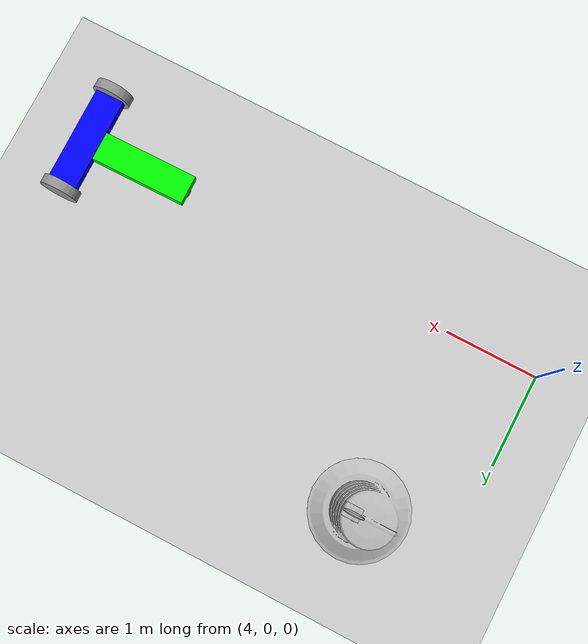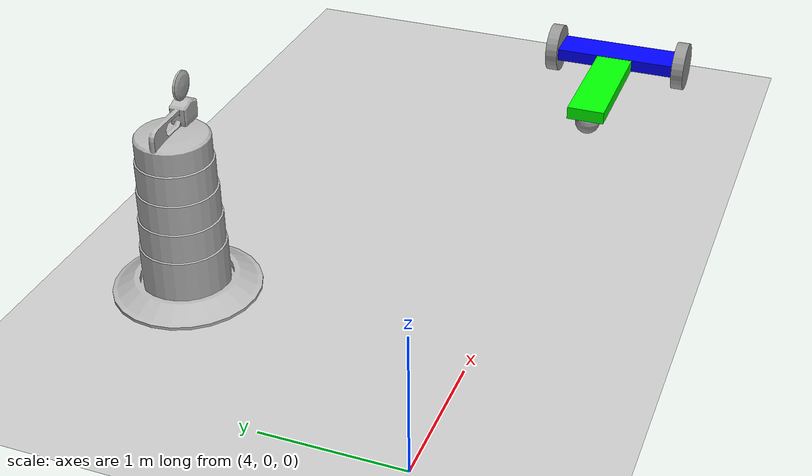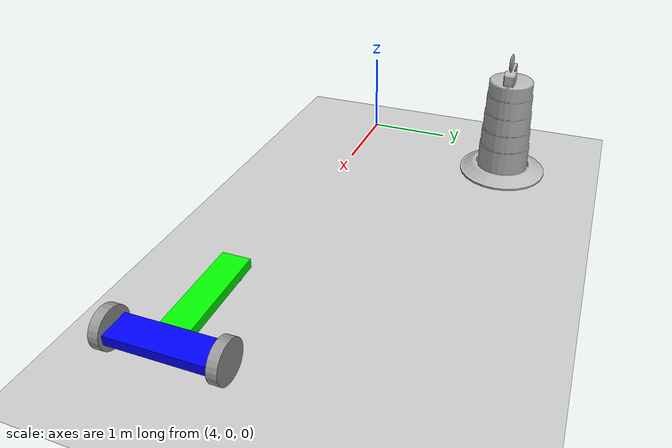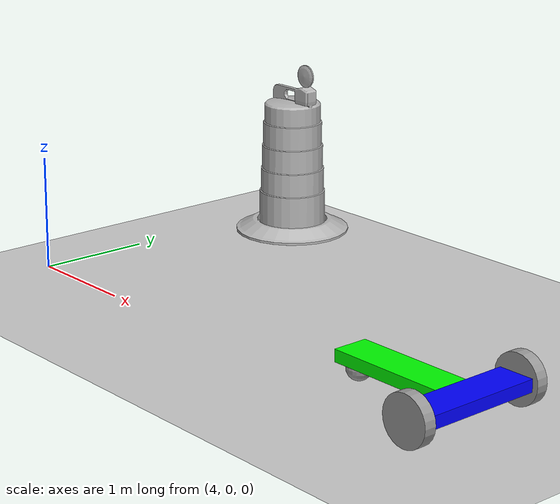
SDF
<sdf version="1.6">
 <world name="default">
  <light name="sun" type="directional">
   <pose>0 0 10 0 -0 0</pose>
   <diffuse>0.8 0.8 0.8 1</diffuse>
   <specular>0.2 0.2 0.2 1</specular>
   <attenuation>
    <range>1000</range>
    <constant>0.9</constant>
    <linear>0.01</linear>
    <quadratic>0.001</quadratic>
   </attenuation>
   <direction>-0.5 0.1 -0.9</direction>
  </light>
  <model name="ground_plane">
   <static>1</static>
   <link name="link">
    <collision name="collision">
     <geometry><plane><normal>0 0 1</normal><size>100 100</size></plane></geometry>
     <surface><friction><ode><mu>100</mu><mu2>50</mu2></ode></friction></surface>
    </collision>
    <visual name="visual">
     <cast_shadows>0</cast_shadows>
     <geometry><plane><normal>0 0 1</normal><size>100 100</size></plane></geometry>
     <material>
      <script><uri>file://media/materials/scripts/gazebo.material</uri><name>Gazebo/Grey</name></script>
     </material>
    </visual>
   </link>
  </model>
  <gravity>0 0 -9.8</gravity>
  <magnetic_field>6e-06 2.3e-05 -4.2e-05</magnetic_field>
  <atmosphere type="adiabatic"/>
  <physics name="default_physics" default="0" type="ode">
   <max_step_size>0.001</max_step_size>
   <real_time_factor>1</real_time_factor>
   <real_time_update_rate>1000</real_time_update_rate>
  </physics>
  <scene><ambient>0.4 0.4 0.4 1</ambient><background>0.7 0.7 0.7 1</background><shadows>1</shadows></scene>
  <spherical_coordinates>
   <surface_model>EARTH_WGS84</surface_model>
   <latitude_deg>0</latitude_deg>
   <longitude_deg>0</longitude_deg>
   <elevation>0</elevation>
   <heading_deg>0</heading_deg>
  </spherical_coordinates>
  <model name="Construction Barrel">
   <link name="link">
    <inertial>
     <pose>0 0 0.4 0 -0 0</pose>
     <mass>500</mass>
     <inertia><ixx>51.2096</ixx><iyy>51.2096</iyy><izz>25</izz><ixy>0</ixy><ixz>0</ixz><iyz>0</iyz></inertia>
    </inertial>
    <collision name="collision">
     <geometry><mesh><uri>model://construction_barrel/meshes/construction_barrel.dae</uri></mesh></geometry>
    </collision>
    <visual name="visual">
     <geometry><mesh><uri>model://construction_barrel/meshes/construction_barrel.dae</uri></mesh></geometry>
    </visual>
   </link>
   <pose>5.00004 2.00003 0.189799 4e-06 -0 0.003871</pose>
  </model>
  <model name="myRobot">
   <link name="link_0">
    <inertial>
     <mass>1</mass>
     <inertia>
      <ixx>0.166667</ixx>
      <ixy>0</ixy>
      <ixz>0</ixz>
      <iyy>0.166667</iyy>
      <iyz>0</iyz>
      <izz>0.166667</izz>
     </inertia>
     <pose>-0.01 0 0 0 -0 0</pose>
    </inertial>
    <pose>0.00249 0.000674 0.2 3.14159 0.001593 3.14159</pose>
    <visual name="visual">
     <geometry><box><size>0.3 1 0.1</size></box></geometry>
     <material>
      <lighting>1</lighting>
      <script><uri>file://media/materials/scripts/gazebo.material</uri><name>Gazebo/Grey</name></script>
      <shader type="pixel"><normal_map>__default__</normal_map></shader>
      <ambient>0 0 1 1</ambient>
      <diffuse>0 0 1 1</diffuse>
      <specular>0 0 1 1</specular>
      <emissive>0 0 0 1</emissive>
     </material>
    </visual>
    <collision name="collision">
     <geometry><box><size>0.3 1 0.1</size></box></geometry>
     <surface>
      <friction>
       <ode><mu>1</mu><mu2>1</mu2><fdir1>0 0 0</fdir1><slip1>0</slip1><slip2>0</slip2></ode>
       <torsional>
        <coefficient>1</coefficient>
        <patch_radius>0</patch_radius>
        <surface_radius>0</surface_radius>
        <use_patch_radius>1</use_patch_radius>
        <ode><slip>0</slip></ode>
       </torsional>
      </friction>
      <bounce><restitution_coefficient>0</restitution_coefficient><threshold>1e+06</threshold></bounce>
      <contact>
       <collide_without_contact>0</collide_without_contact>
       <collide_without_contact_bitmask>1</collide_without_contact_bitmask>
       <collide_bitmask>1</collide_bitmask>
       <ode>
        <soft_cfm>0</soft_cfm>
        <soft_erp>0.2</soft_erp>
        <kp>1e+13</kp>
        <kd>1</kd>
        <max_vel>0.01</max_vel>
        <min_depth>0</min_depth>
       </ode>
       <bullet>
        <split_impulse>1</split_impulse>
        <split_impulse_penetration_threshold>-0.01</split_impulse_penetration_threshold>
        <soft_cfm>0</soft_cfm>
        <soft_erp>0.2</soft_erp>
        <kp>1e+13</kp>
        <kd>1</kd>
       </bullet>
      </contact>
     </surface>
    </collision>
   </link>
   <link name="link_0_0">
    <inertial>
     <mass>1</mass>
     <inertia><ixx>0.1</ixx><ixy>0</ixy><ixz>0</ixz><iyy>0.1</iyy><iyz>0</iyz><izz>0.1</izz></inertia>
    </inertial>
    <pose>-1.04973 -1e-06 0.1 -3.14159 0.001372 3.14131</pose>
    <visual name="visual">
     <geometry><sphere><radius>0.1</radius></sphere></geometry>
     <material>
      <lighting>1</lighting>
      <script><uri>file://media/materials/scripts/gazebo.material</uri><name>Gazebo/Grey</name></script>
      <shader type="pixel"><normal_map>__default__</normal_map></shader>
      <ambient>0.3 0.3 0.3 1</ambient>
      <diffuse>0.7 0.7 0.7 1</diffuse>
      <specular>0.01 0.01 0.01 1</specular>
      <emissive>0 0 0 1</emissive>
     </material>
    </visual>
    <collision name="collision">
     <geometry><sphere><radius>0.1</radius></sphere></geometry>
     <surface>
      <friction>
       <ode><mu>1</mu><mu2>1</mu2><fdir1>0 0 0</fdir1><slip1>0</slip1><slip2>0</slip2></ode>
       <torsional>
        <coefficient>1</coefficient>
        <patch_radius>0</patch_radius>
        <surface_radius>0</surface_radius>
        <use_patch_radius>1</use_patch_radius>
        <ode><slip>0</slip></ode>
       </torsional>
      </friction>
      <bounce><restitution_coefficient>0</restitution_coefficient><threshold>1e+06</threshold></bounce>
      <contact>
       <collide_without_contact>0</collide_without_contact>
       <collide_without_contact_bitmask>1</collide_without_contact_bitmask>
       <collide_bitmask>1</collide_bitmask>
       <ode>
        <soft_cfm>0</soft_cfm>
        <soft_erp>0.2</soft_erp>
        <kp>1e+13</kp>
        <kd>1</kd>
        <max_vel>0.01</max_vel>
        <min_depth>0</min_depth>
       </ode>
       <bullet>
        <split_impulse>1</split_impulse>
        <split_impulse_penetration_threshold>-0.01</split_impulse_penetration_threshold>
        <soft_cfm>0</soft_cfm>
        <soft_erp>0.2</soft_erp>
        <kp>1e+13</kp>
        <kd>1</kd>
       </bullet>
      </contact>
     </surface>
    </collision>
   </link>
   <link name="link_0_clone_clone">
    <inertial>
     <mass>1</mass>
     <inertia>
      <ixx>0.166667</ixx>
      <ixy>0</ixy>
      <ixz>0</ixz>
      <iyy>0.166667</iyy>
      <iyz>0</iyz>
      <izz>0.166667</izz>
     </inertia>
     <pose>-0.01 0 0 0 -0 0</pose>
    </inertial>
    <pose>-0.650318 0.000187 0.19965 -3.14022 -0 1.5707</pose>
    <visual name="visual">
     <geometry><box><size>0.3 1 0.1</size></box></geometry>
     <material>
      <lighting>1</lighting>
      <script><uri>file://media/materials/scripts/gazebo.material</uri><name>Gazebo/Grey</name></script>
      <shader type="pixel"><normal_map>__default__</normal_map></shader>
      <ambient>0 1 0 1</ambient>
      <diffuse>0 0 0 1</diffuse>
      <specular>0 0 0 1</specular>
      <emissive>0 0 0 1</emissive>
     </material>
    </visual>
    <collision name="collision">
     <geometry><box><size>0.3 1 0.1</size></box></geometry>
     <surface>
      <friction>
       <ode><mu>1</mu><mu2>1</mu2><fdir1>0 0 0</fdir1><slip1>0</slip1><slip2>0</slip2></ode>
       <torsional>
        <coefficient>1</coefficient>
        <patch_radius>0</patch_radius>
        <surface_radius>0</surface_radius>
        <use_patch_radius>1</use_patch_radius>
        <ode><slip>0</slip></ode>
       </torsional>
      </friction>
      <bounce><restitution_coefficient>0</restitution_coefficient><threshold>1e+06</threshold></bounce>
      <contact>
       <collide_without_contact>0</collide_without_contact>
       <collide_without_contact_bitmask>1</collide_without_contact_bitmask>
       <collide_bitmask>1</collide_bitmask>
       <ode>
        <soft_cfm>0</soft_cfm>
        <soft_erp>0.2</soft_erp>
        <kp>1e+13</kp>
        <kd>1</kd>
        <max_vel>0.01</max_vel>
        <min_depth>0</min_depth>
       </ode>
       <bullet>
        <split_impulse>1</split_impulse>
        <split_impulse_penetration_threshold>-0.01</split_impulse_penetration_threshold>
        <soft_cfm>0</soft_cfm>
        <soft_erp>0.2</soft_erp>
        <kp>1e+13</kp>
        <kd>1</kd>
       </bullet>
      </contact>
     </surface>
    </collision>
   </link>
   <link name="link_2">
    <inertial>
     <mass>1</mass>
     <inertia><ixx>0.145833</ixx><ixy>0</ixy><ixz>0</ixz><iyy>0.145833</iyy><iyz>0</iyz><izz>0.125</izz></inertia>
    </inertial>
    <pose>-0 -0.550019 0.2 1.5707 -0 0</pose>
    <visual name="visual">
     <geometry><cylinder><radius>0.2</radius><length>0.1</length></cylinder></geometry>
     <material>
      <lighting>1</lighting>
      <script><uri>file://media/materials/scripts/gazebo.material</uri><name>Gazebo/Grey</name></script>
      <shader type="pixel"><normal_map>__default__</normal_map></shader>
      <ambient>1 1 1 1</ambient>
      <diffuse>1 1 1 1</diffuse>
      <specular>1 1 1 1</specular>
      <emissive>0 0 0 1</emissive>
     </material>
    </visual>
    <collision name="collision">
     <geometry><cylinder><radius>0.2</radius><length>0.1</length></cylinder></geometry>
     <surface>
      <friction>
       <ode><mu>1</mu><mu2>1</mu2><fdir1>0 0 0</fdir1><slip1>0</slip1><slip2>0</slip2></ode>
       <torsional>
        <coefficient>1</coefficient>
        <patch_radius>0</patch_radius>
        <surface_radius>0</surface_radius>
        <use_patch_radius>1</use_patch_radius>
        <ode><slip>0</slip></ode>
       </torsional>
      </friction>
      <bounce><restitution_coefficient>0</restitution_coefficient><threshold>1e+06</threshold></bounce>
      <contact>
       <collide_without_contact>0</collide_without_contact>
       <collide_without_contact_bitmask>1</collide_without_contact_bitmask>
       <collide_bitmask>1</collide_bitmask>
       <ode>
        <soft_cfm>0</soft_cfm>
        <soft_erp>0.2</soft_erp>
        <kp>1e+13</kp>
        <kd>1</kd>
        <max_vel>0.01</max_vel>
        <min_depth>0</min_depth>
       </ode>
       <bullet>
        <split_impulse>1</split_impulse>
        <split_impulse_penetration_threshold>-0.01</split_impulse_penetration_threshold>
        <soft_cfm>0</soft_cfm>
        <soft_erp>0.2</soft_erp>
        <kp>1e+13</kp>
        <kd>1</kd>
       </bullet>
      </contact>
     </surface>
    </collision>
   </link>
   <link name="link_2_clone">
    <inertial>
     <mass>1</mass>
     <inertia><ixx>0.145833</ixx><ixy>0</ixy><ixz>0</ixz><iyy>0.145833</iyy><iyz>0</iyz><izz>0.125</izz></inertia>
    </inertial>
    <pose>0 0.550019 0.2 1.5707 -0 0</pose>
    <visual name="visual">
     <geometry><cylinder><radius>0.2</radius><length>0.1</length></cylinder></geometry>
     <material>
      <lighting>1</lighting>
      <script><uri>file://media/materials/scripts/gazebo.material</uri><name>Gazebo/Grey</name></script>
      <shader type="pixel"><normal_map>__default__</normal_map></shader>
      <ambient>1 1 1 1</ambient>
      <diffuse>1 1 1 1</diffuse>
      <specular>1 1 1 1</specular>
      <emissive>0 0 0 1</emissive>
     </material>
    </visual>
    <collision name="collision">
     <geometry><cylinder><radius>0.2</radius><length>0.1</length></cylinder></geometry>
     <surface>
      <friction>
       <ode><mu>1</mu><mu2>1</mu2><fdir1>0 0 0</fdir1><slip1>0</slip1><slip2>0</slip2></ode>
       <torsional>
        <coefficient>1</coefficient>
        <patch_radius>0</patch_radius>
        <surface_radius>0</surface_radius>
        <use_patch_radius>1</use_patch_radius>
        <ode><slip>0</slip></ode>
       </torsional>
      </friction>
      <bounce><restitution_coefficient>0</restitution_coefficient><threshold>1e+06</threshold></bounce>
      <contact>
       <collide_without_contact>0</collide_without_contact>
       <collide_without_contact_bitmask>1</collide_without_contact_bitmask>
       <collide_bitmask>1</collide_bitmask>
       <ode>
        <soft_cfm>0</soft_cfm>
        <soft_erp>0.2</soft_erp>
        <kp>1e+13</kp>
        <kd>1</kd>
        <max_vel>0.01</max_vel>
        <min_depth>0</min_depth>
       </ode>
       <bullet>
        <split_impulse>1</split_impulse>
        <split_impulse_penetration_threshold>-0.01</split_impulse_penetration_threshold>
        <soft_cfm>0</soft_cfm>
        <soft_erp>0.2</soft_erp>
        <kp>1e+13</kp>
        <kd>1</kd>
       </bullet>
      </contact>
     </surface>
    </collision>
   </link>
   <joint name="link_0_JOINT_2" type="revolute">
    <parent>link_0</parent>
    <child>link_2</child>
    <axis>
     <xyz>0 0 1</xyz>
     <use_parent_model_frame>0</use_parent_model_frame>
     <limit>
      <lower>-1.79769e+308</lower>
      <upper>1.79769e+308</upper>
      <effort>-1</effort>
      <velocity>-1</velocity>
     </limit>
     <dynamics>
      <spring_reference>0</spring_reference>
      <spring_stiffness>0</spring_stiffness>
      <damping>0</damping>
      <friction>0</friction>
     </dynamics>
    </axis>
    <physics>
     <ode><limit><cfm>0</cfm><erp>0.2</erp></limit><suspension><cfm>0</cfm><erp>0.2</erp></suspension></ode>
    </physics>
   </joint>
   <joint name="link_0_JOINT_3_0" type="fixed">
    <parent>link_0</parent>
    <child>link_0_clone_clone</child>
    <physics>
     <ode><limit><cfm>0</cfm><erp>0.2</erp></limit><suspension><cfm>0</cfm><erp>0.2</erp></suspension></ode>
    </physics>
   </joint>
   <joint name="link_0_JOINT_3" type="revolute">
    <parent>link_0</parent>
    <child>link_2_clone</child>
    <axis>
     <xyz>0 0 1</xyz>
     <use_parent_model_frame>0</use_parent_model_frame>
     <limit>
      <lower>-1.79769e+308</lower>
      <upper>1.79769e+308</upper>
      <effort>-1</effort>
      <velocity>-1</velocity>
     </limit>
     <dynamics>
      <spring_reference>0</spring_reference>
      <spring_stiffness>0</spring_stiffness>
      <damping>0</damping>
      <friction>0</friction>
     </dynamics>
    </axis>
    <physics>
     <ode><limit><cfm>0</cfm><erp>0.2</erp></limit><suspension><cfm>0</cfm><erp>0.2</erp></suspension></ode>
    </physics>
   </joint>
   <joint name="link_0_clone_clone_JOINT_7" type="fixed">
    <parent>link_0_clone_clone</parent>
    <child>link_0_0</child>
    <physics>
     <ode><limit><cfm>0</cfm><erp>0.2</erp></limit><suspension><cfm>0</cfm><erp>0.2</erp></suspension></ode>
    </physics>
   </joint>
   <static>0</static>
   <pose>9.08547 0.000485 0.189805 -0 -1.3e-05 0.007726</pose>
  </model>
 </world>
</sdf>
